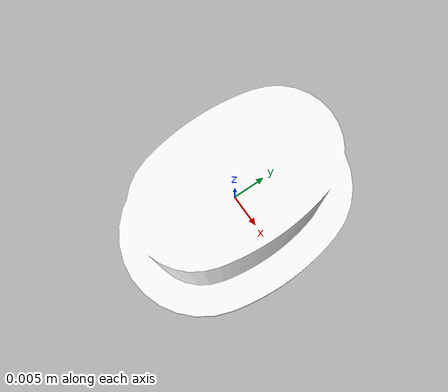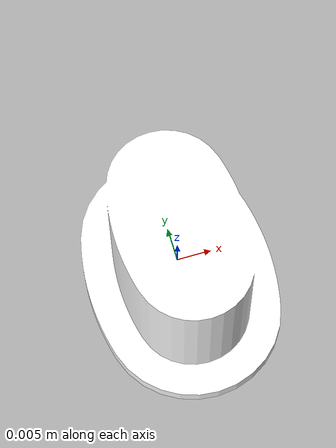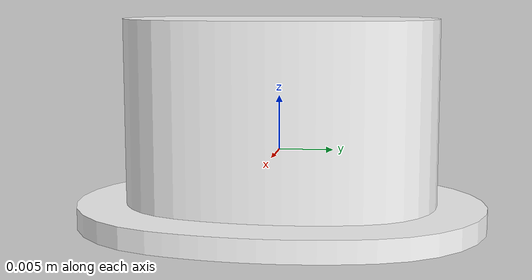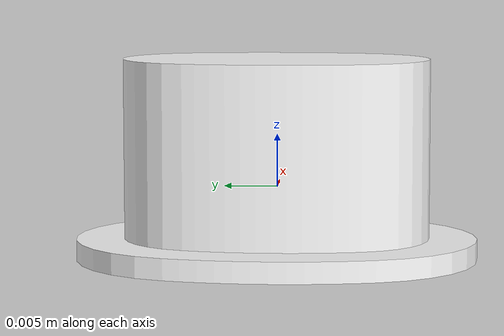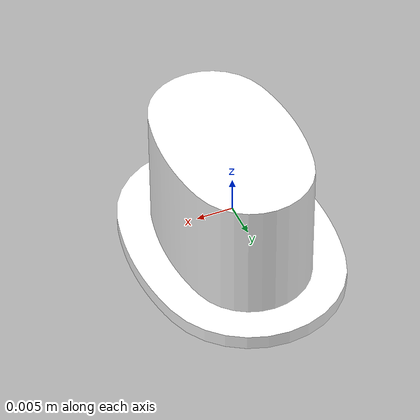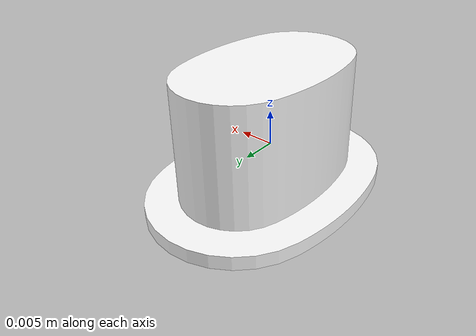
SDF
<!-- Copy made to test scale -->
<?xml version="1.0" ?>
<sdf version="1.5">
	<model name="tophat">
		<static>false</static>
		<link name="link">
			<inertial>
				<mass>0.1</mass>
				<inertia>
					<ixx>0.00006484375</ixx>
					<ixy>0.0</ixy>
					<ixz>0.0</ixz>
					<iyy>0.000162109375</iyy>
					<iyz>0.0</iyz>
					<izz>0.000162109375</izz>
				</inertia>
			</inertial>
			<collision name="collision">
				<geometry>
					<mesh>
						<uri>model://tophat/meshes/tophat.dae</uri>
						<scale>2.0 2.0 2.0</scale>
					</mesh>
				</geometry>
			</collision>

			<visual name="visual">
				<geometry>
					<mesh>
						<uri>model://tophat/meshes/tophat.dae</uri>
						<scale>2.0 2.0 2.0</scale>
					</mesh>
				</geometry>
			</visual>
		</link>
	</model>
</sdf>
